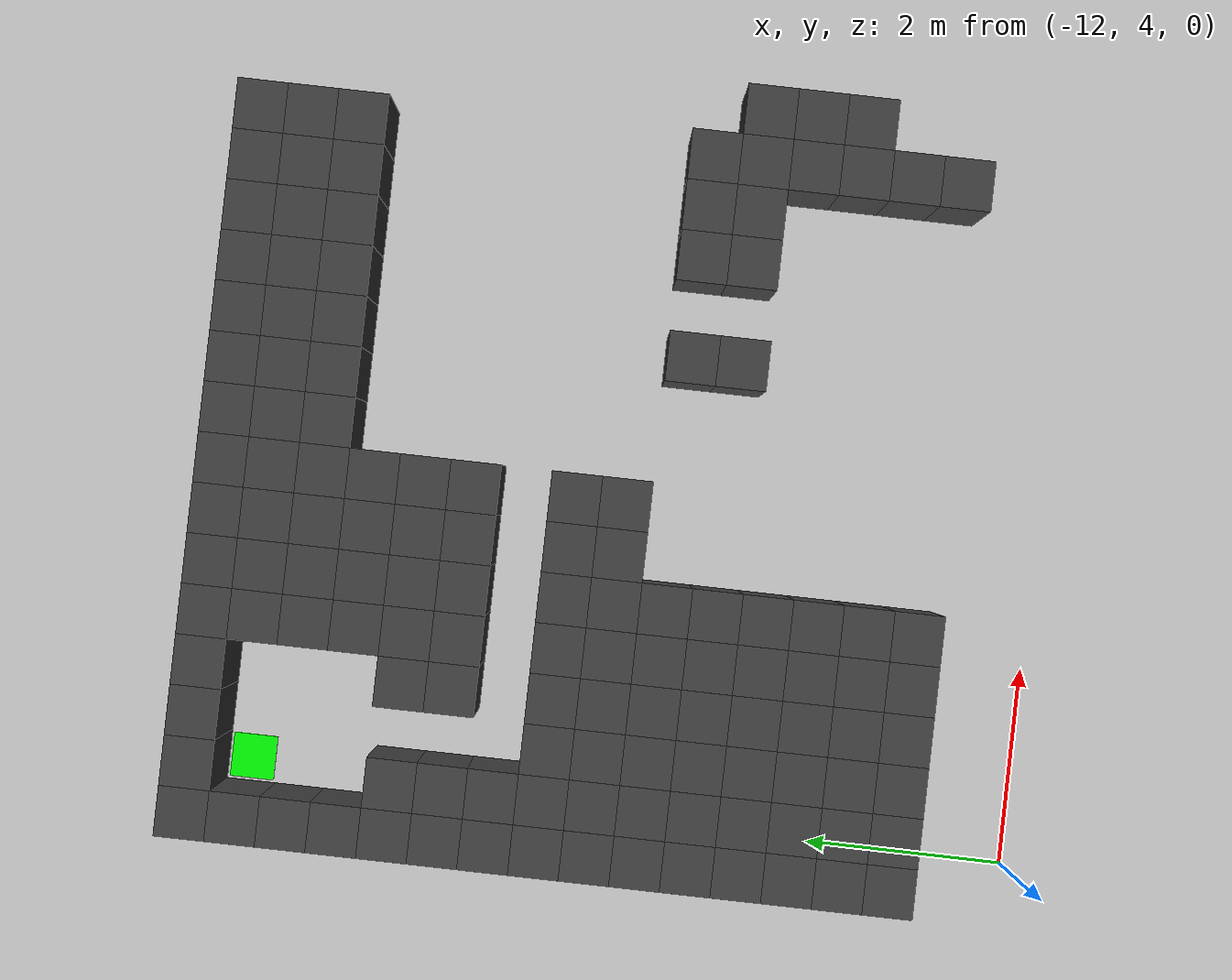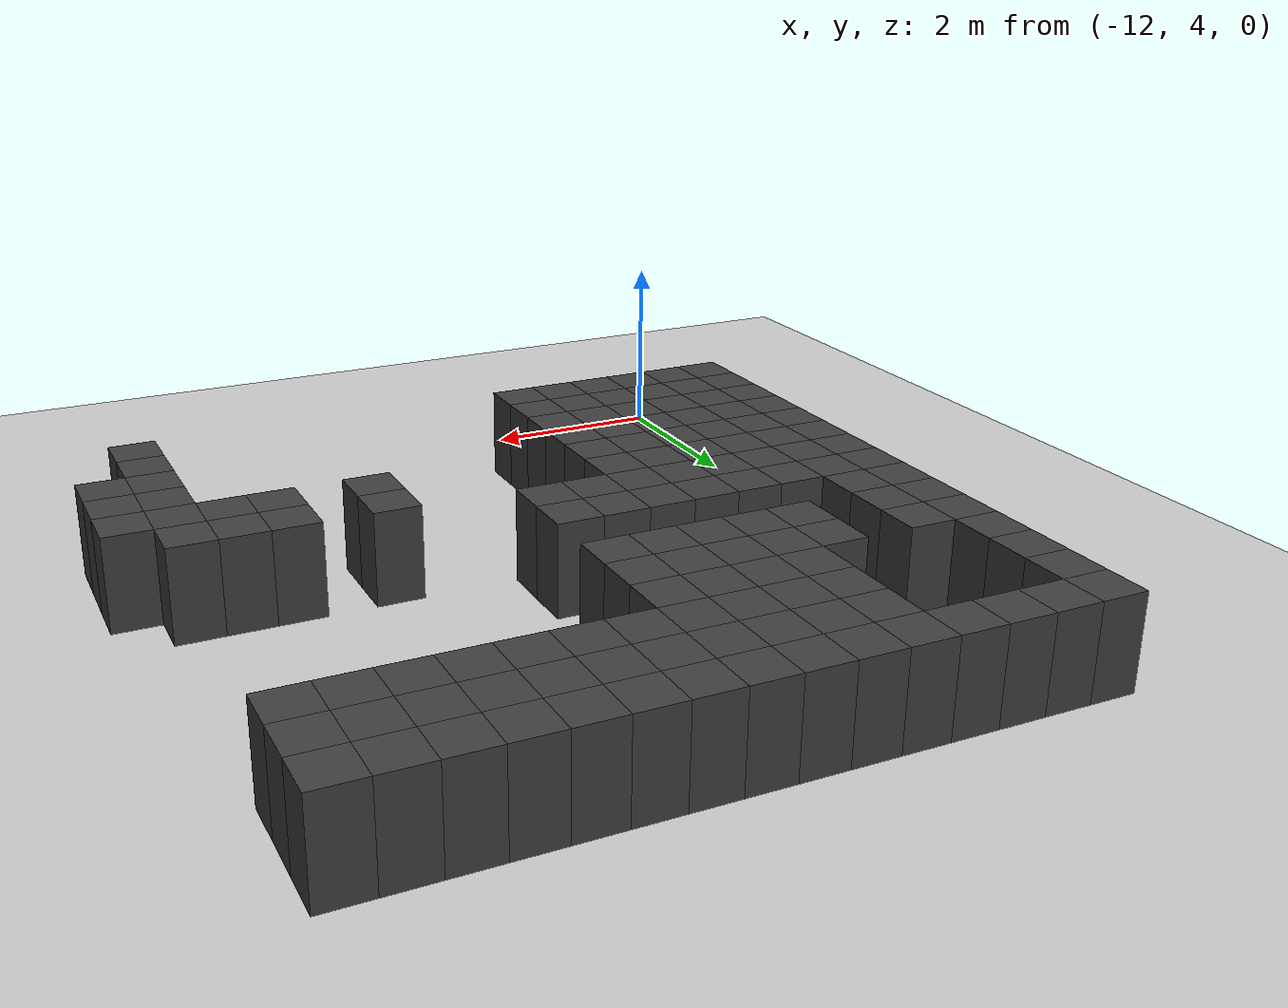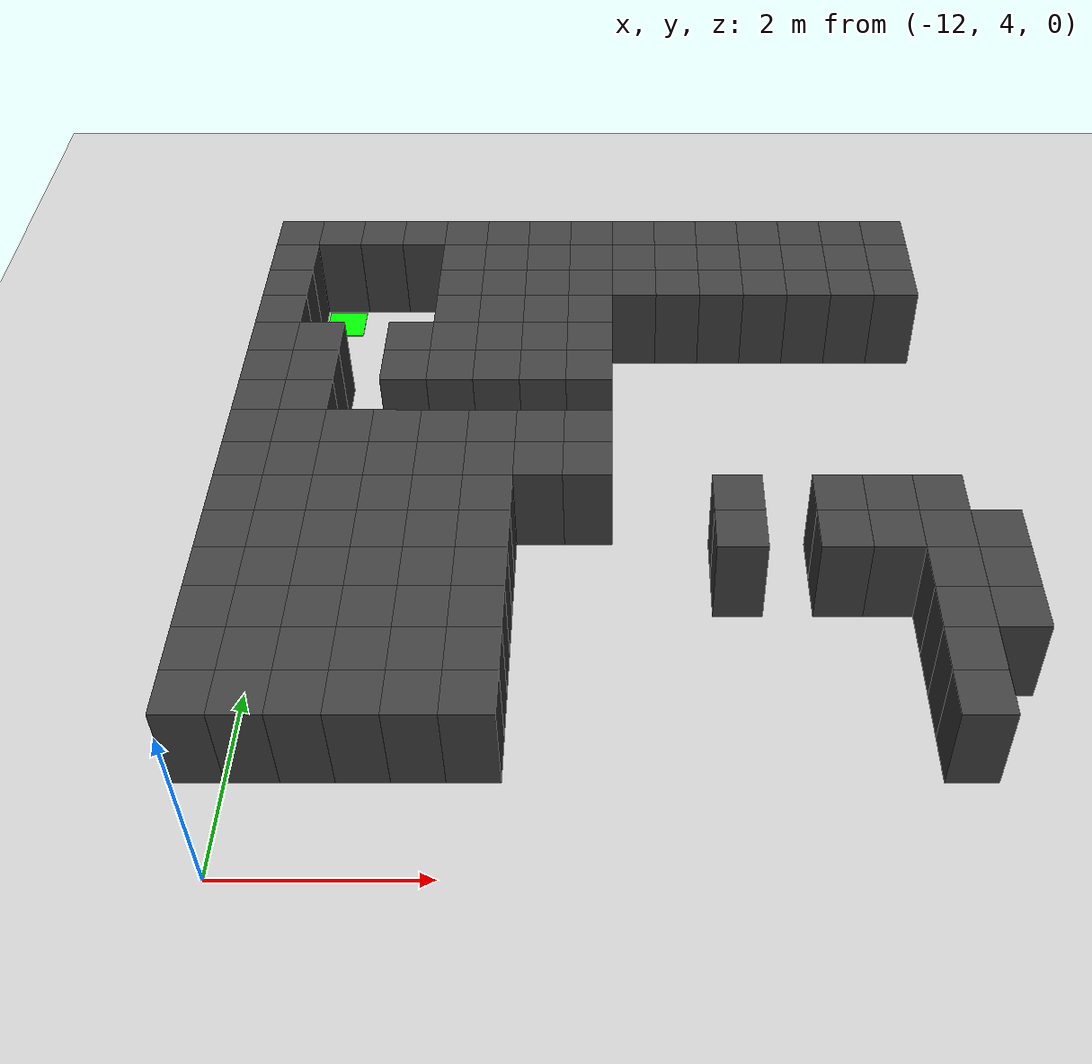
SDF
<sdf version="1.7">
 <world name="map_14494">
  <model name="ground_plane">
   <static>true</static>
   <link name="link">
    <collision name="collision">
     <geometry><plane><normal>0 0 1</normal><size>200 200</size></plane></geometry>
    </collision>
    <visual name="visual">
     <geometry><plane><normal>0 0 1</normal><size>200 200</size></plane></geometry>
     <material><ambient>0.8 0.8 0.8 1</ambient><diffuse>0.8 0.8 0.8 1</diffuse></material>
    </visual>
   </link>
  </model>
  <model name="maze_environment">
   <static>true</static>
   <link name="wall_0">
    <pose>-12.250 12.250 0.500 0 0 0</pose>
    <collision name="col"><geometry><box><size>0.5 0.5 1.0</size></box></geometry></collision>
    <visual name="vis">
     <geometry><box><size>0.5 0.5 1.0</size></box></geometry>
     <material><ambient>0.15 0.15 0.15 1</ambient><diffuse>0.25 0.25 0.25 1</diffuse></material>
    </visual>
   </link>
   <link name="wall_1">
    <pose>-11.750 12.250 0.500 0 0 0</pose>
    <collision name="col"><geometry><box><size>0.5 0.5 1.0</size></box></geometry></collision>
    <visual name="vis">
     <geometry><box><size>0.5 0.5 1.0</size></box></geometry>
     <material><ambient>0.15 0.15 0.15 1</ambient><diffuse>0.25 0.25 0.25 1</diffuse></material>
    </visual>
   </link>
   <link name="wall_2">
    <pose>-11.250 12.250 0.500 0 0 0</pose>
    <collision name="col"><geometry><box><size>0.5 0.5 1.0</size></box></geometry></collision>
    <visual name="vis">
     <geometry><box><size>0.5 0.5 1.0</size></box></geometry>
     <material><ambient>0.15 0.15 0.15 1</ambient><diffuse>0.25 0.25 0.25 1</diffuse></material>
    </visual>
   </link>
   <link name="wall_3">
    <pose>-10.750 12.250 0.500 0 0 0</pose>
    <collision name="col"><geometry><box><size>0.5 0.5 1.0</size></box></geometry></collision>
    <visual name="vis">
     <geometry><box><size>0.5 0.5 1.0</size></box></geometry>
     <material><ambient>0.15 0.15 0.15 1</ambient><diffuse>0.25 0.25 0.25 1</diffuse></material>
    </visual>
   </link>
   <link name="wall_4">
    <pose>-10.250 12.250 0.500 0 0 0</pose>
    <collision name="col"><geometry><box><size>0.5 0.5 1.0</size></box></geometry></collision>
    <visual name="vis">
     <geometry><box><size>0.5 0.5 1.0</size></box></geometry>
     <material><ambient>0.15 0.15 0.15 1</ambient><diffuse>0.25 0.25 0.25 1</diffuse></material>
    </visual>
   </link>
   <link name="wall_5">
    <pose>-9.750 12.250 0.500 0 0 0</pose>
    <collision name="col"><geometry><box><size>0.5 0.5 1.0</size></box></geometry></collision>
    <visual name="vis">
     <geometry><box><size>0.5 0.5 1.0</size></box></geometry>
     <material><ambient>0.15 0.15 0.15 1</ambient><diffuse>0.25 0.25 0.25 1</diffuse></material>
    </visual>
   </link>
   <link name="wall_6">
    <pose>-9.250 12.250 0.500 0 0 0</pose>
    <collision name="col"><geometry><box><size>0.5 0.5 1.0</size></box></geometry></collision>
    <visual name="vis">
     <geometry><box><size>0.5 0.5 1.0</size></box></geometry>
     <material><ambient>0.15 0.15 0.15 1</ambient><diffuse>0.25 0.25 0.25 1</diffuse></material>
    </visual>
   </link>
   <link name="wall_7">
    <pose>-8.750 12.250 0.500 0 0 0</pose>
    <collision name="col"><geometry><box><size>0.5 0.5 1.0</size></box></geometry></collision>
    <visual name="vis">
     <geometry><box><size>0.5 0.5 1.0</size></box></geometry>
     <material><ambient>0.15 0.15 0.15 1</ambient><diffuse>0.25 0.25 0.25 1</diffuse></material>
    </visual>
   </link>
   <link name="wall_8">
    <pose>-8.250 12.250 0.500 0 0 0</pose>
    <collision name="col"><geometry><box><size>0.5 0.5 1.0</size></box></geometry></collision>
    <visual name="vis">
     <geometry><box><size>0.5 0.5 1.0</size></box></geometry>
     <material><ambient>0.15 0.15 0.15 1</ambient><diffuse>0.25 0.25 0.25 1</diffuse></material>
    </visual>
   </link>
   <link name="wall_9">
    <pose>-7.750 12.250 0.500 0 0 0</pose>
    <collision name="col"><geometry><box><size>0.5 0.5 1.0</size></box></geometry></collision>
    <visual name="vis">
     <geometry><box><size>0.5 0.5 1.0</size></box></geometry>
     <material><ambient>0.15 0.15 0.15 1</ambient><diffuse>0.25 0.25 0.25 1</diffuse></material>
    </visual>
   </link>
   <link name="wall_10">
    <pose>-7.250 12.250 0.500 0 0 0</pose>
    <collision name="col"><geometry><box><size>0.5 0.5 1.0</size></box></geometry></collision>
    <visual name="vis">
     <geometry><box><size>0.5 0.5 1.0</size></box></geometry>
     <material><ambient>0.15 0.15 0.15 1</ambient><diffuse>0.25 0.25 0.25 1</diffuse></material>
    </visual>
   </link>
   <link name="wall_11">
    <pose>-6.750 12.250 0.500 0 0 0</pose>
    <collision name="col"><geometry><box><size>0.5 0.5 1.0</size></box></geometry></collision>
    <visual name="vis">
     <geometry><box><size>0.5 0.5 1.0</size></box></geometry>
     <material><ambient>0.15 0.15 0.15 1</ambient><diffuse>0.25 0.25 0.25 1</diffuse></material>
    </visual>
   </link>
   <link name="wall_12">
    <pose>-6.250 12.250 0.500 0 0 0</pose>
    <collision name="col"><geometry><box><size>0.5 0.5 1.0</size></box></geometry></collision>
    <visual name="vis">
     <geometry><box><size>0.5 0.5 1.0</size></box></geometry>
     <material><ambient>0.15 0.15 0.15 1</ambient><diffuse>0.25 0.25 0.25 1</diffuse></material>
    </visual>
   </link>
   <link name="wall_13">
    <pose>-5.750 12.250 0.500 0 0 0</pose>
    <collision name="col"><geometry><box><size>0.5 0.5 1.0</size></box></geometry></collision>
    <visual name="vis">
     <geometry><box><size>0.5 0.5 1.0</size></box></geometry>
     <material><ambient>0.15 0.15 0.15 1</ambient><diffuse>0.25 0.25 0.25 1</diffuse></material>
    </visual>
   </link>
   <link name="wall_14">
    <pose>-5.250 12.250 0.500 0 0 0</pose>
    <collision name="col"><geometry><box><size>0.5 0.5 1.0</size></box></geometry></collision>
    <visual name="vis">
     <geometry><box><size>0.5 0.5 1.0</size></box></geometry>
     <material><ambient>0.15 0.15 0.15 1</ambient><diffuse>0.25 0.25 0.25 1</diffuse></material>
    </visual>
   </link>
   <link name="wall_50">
    <pose>-12.250 11.750 0.500 0 0 0</pose>
    <collision name="col"><geometry><box><size>0.5 0.5 1.0</size></box></geometry></collision>
    <visual name="vis">
     <geometry><box><size>0.5 0.5 1.0</size></box></geometry>
     <material><ambient>0.15 0.15 0.15 1</ambient><diffuse>0.25 0.25 0.25 1</diffuse></material>
    </visual>
   </link>
   <link name="wall_51">
    <pose>-10.250 11.750 0.500 0 0 0</pose>
    <collision name="col"><geometry><box><size>0.5 0.5 1.0</size></box></geometry></collision>
    <visual name="vis">
     <geometry><box><size>0.5 0.5 1.0</size></box></geometry>
     <material><ambient>0.15 0.15 0.15 1</ambient><diffuse>0.25 0.25 0.25 1</diffuse></material>
    </visual>
   </link>
   <link name="wall_52">
    <pose>-9.750 11.750 0.500 0 0 0</pose>
    <collision name="col"><geometry><box><size>0.5 0.5 1.0</size></box></geometry></collision>
    <visual name="vis">
     <geometry><box><size>0.5 0.5 1.0</size></box></geometry>
     <material><ambient>0.15 0.15 0.15 1</ambient><diffuse>0.25 0.25 0.25 1</diffuse></material>
    </visual>
   </link>
   <link name="wall_53">
    <pose>-9.250 11.750 0.500 0 0 0</pose>
    <collision name="col"><geometry><box><size>0.5 0.5 1.0</size></box></geometry></collision>
    <visual name="vis">
     <geometry><box><size>0.5 0.5 1.0</size></box></geometry>
     <material><ambient>0.15 0.15 0.15 1</ambient><diffuse>0.25 0.25 0.25 1</diffuse></material>
    </visual>
   </link>
   <link name="wall_54">
    <pose>-8.750 11.750 0.500 0 0 0</pose>
    <collision name="col"><geometry><box><size>0.5 0.5 1.0</size></box></geometry></collision>
    <visual name="vis">
     <geometry><box><size>0.5 0.5 1.0</size></box></geometry>
     <material><ambient>0.15 0.15 0.15 1</ambient><diffuse>0.25 0.25 0.25 1</diffuse></material>
    </visual>
   </link>
   <link name="wall_55">
    <pose>-8.250 11.750 0.500 0 0 0</pose>
    <collision name="col"><geometry><box><size>0.5 0.5 1.0</size></box></geometry></collision>
    <visual name="vis">
     <geometry><box><size>0.5 0.5 1.0</size></box></geometry>
     <material><ambient>0.15 0.15 0.15 1</ambient><diffuse>0.25 0.25 0.25 1</diffuse></material>
    </visual>
   </link>
   <link name="wall_56">
    <pose>-7.750 11.750 0.500 0 0 0</pose>
    <collision name="col"><geometry><box><size>0.5 0.5 1.0</size></box></geometry></collision>
    <visual name="vis">
     <geometry><box><size>0.5 0.5 1.0</size></box></geometry>
     <material><ambient>0.15 0.15 0.15 1</ambient><diffuse>0.25 0.25 0.25 1</diffuse></material>
    </visual>
   </link>
   <link name="wall_57">
    <pose>-7.250 11.750 0.500 0 0 0</pose>
    <collision name="col"><geometry><box><size>0.5 0.5 1.0</size></box></geometry></collision>
    <visual name="vis">
     <geometry><box><size>0.5 0.5 1.0</size></box></geometry>
     <material><ambient>0.15 0.15 0.15 1</ambient><diffuse>0.25 0.25 0.25 1</diffuse></material>
    </visual>
   </link>
   <link name="wall_58">
    <pose>-6.750 11.750 0.500 0 0 0</pose>
    <collision name="col"><geometry><box><size>0.5 0.5 1.0</size></box></geometry></collision>
    <visual name="vis">
     <geometry><box><size>0.5 0.5 1.0</size></box></geometry>
     <material><ambient>0.15 0.15 0.15 1</ambient><diffuse>0.25 0.25 0.25 1</diffuse></material>
    </visual>
   </link>
   <link name="wall_59">
    <pose>-6.250 11.750 0.500 0 0 0</pose>
    <collision name="col"><geometry><box><size>0.5 0.5 1.0</size></box></geometry></collision>
    <visual name="vis">
     <geometry><box><size>0.5 0.5 1.0</size></box></geometry>
     <material><ambient>0.15 0.15 0.15 1</ambient><diffuse>0.25 0.25 0.25 1</diffuse></material>
    </visual>
   </link>
   <link name="wall_60">
    <pose>-5.750 11.750 0.500 0 0 0</pose>
    <collision name="col"><geometry><box><size>0.5 0.5 1.0</size></box></geometry></collision>
    <visual name="vis">
     <geometry><box><size>0.5 0.5 1.0</size></box></geometry>
     <material><ambient>0.15 0.15 0.15 1</ambient><diffuse>0.25 0.25 0.25 1</diffuse></material>
    </visual>
   </link>
   <link name="wall_61">
    <pose>-5.250 11.750 0.500 0 0 0</pose>
    <collision name="col"><geometry><box><size>0.5 0.5 1.0</size></box></geometry></collision>
    <visual name="vis">
     <geometry><box><size>0.5 0.5 1.0</size></box></geometry>
     <material><ambient>0.15 0.15 0.15 1</ambient><diffuse>0.25 0.25 0.25 1</diffuse></material>
    </visual>
   </link>
   <link name="wall_97">
    <pose>-12.250 11.250 0.500 0 0 0</pose>
    <collision name="col"><geometry><box><size>0.5 0.5 1.0</size></box></geometry></collision>
    <visual name="vis">
     <geometry><box><size>0.5 0.5 1.0</size></box></geometry>
     <material><ambient>0.15 0.15 0.15 1</ambient><diffuse>0.25 0.25 0.25 1</diffuse></material>
    </visual>
   </link>
   <link name="wall_98">
    <pose>-10.250 11.250 0.500 0 0 0</pose>
    <collision name="col"><geometry><box><size>0.5 0.5 1.0</size></box></geometry></collision>
    <visual name="vis">
     <geometry><box><size>0.5 0.5 1.0</size></box></geometry>
     <material><ambient>0.15 0.15 0.15 1</ambient><diffuse>0.25 0.25 0.25 1</diffuse></material>
    </visual>
   </link>
   <link name="wall_99">
    <pose>-9.750 11.250 0.500 0 0 0</pose>
    <collision name="col"><geometry><box><size>0.5 0.5 1.0</size></box></geometry></collision>
    <visual name="vis">
     <geometry><box><size>0.5 0.5 1.0</size></box></geometry>
     <material><ambient>0.15 0.15 0.15 1</ambient><diffuse>0.25 0.25 0.25 1</diffuse></material>
    </visual>
   </link>
   <link name="wall_100">
    <pose>-9.250 11.250 0.500 0 0 0</pose>
    <collision name="col"><geometry><box><size>0.5 0.5 1.0</size></box></geometry></collision>
    <visual name="vis">
     <geometry><box><size>0.5 0.5 1.0</size></box></geometry>
     <material><ambient>0.15 0.15 0.15 1</ambient><diffuse>0.25 0.25 0.25 1</diffuse></material>
    </visual>
   </link>
   <link name="wall_101">
    <pose>-8.750 11.250 0.500 0 0 0</pose>
    <collision name="col"><geometry><box><size>0.5 0.5 1.0</size></box></geometry></collision>
    <visual name="vis">
     <geometry><box><size>0.5 0.5 1.0</size></box></geometry>
     <material><ambient>0.15 0.15 0.15 1</ambient><diffuse>0.25 0.25 0.25 1</diffuse></material>
    </visual>
   </link>
   <link name="wall_102">
    <pose>-8.250 11.250 0.500 0 0 0</pose>
    <collision name="col"><geometry><box><size>0.5 0.5 1.0</size></box></geometry></collision>
    <visual name="vis">
     <geometry><box><size>0.5 0.5 1.0</size></box></geometry>
     <material><ambient>0.15 0.15 0.15 1</ambient><diffuse>0.25 0.25 0.25 1</diffuse></material>
    </visual>
   </link>
   <link name="wall_103">
    <pose>-7.750 11.250 0.500 0 0 0</pose>
    <collision name="col"><geometry><box><size>0.5 0.5 1.0</size></box></geometry></collision>
    <visual name="vis">
     <geometry><box><size>0.5 0.5 1.0</size></box></geometry>
     <material><ambient>0.15 0.15 0.15 1</ambient><diffuse>0.25 0.25 0.25 1</diffuse></material>
    </visual>
   </link>
   <link name="wall_104">
    <pose>-7.250 11.250 0.500 0 0 0</pose>
    <collision name="col"><geometry><box><size>0.5 0.5 1.0</size></box></geometry></collision>
    <visual name="vis">
     <geometry><box><size>0.5 0.5 1.0</size></box></geometry>
     <material><ambient>0.15 0.15 0.15 1</ambient><diffuse>0.25 0.25 0.25 1</diffuse></material>
    </visual>
   </link>
   <link name="wall_105">
    <pose>-6.750 11.250 0.500 0 0 0</pose>
    <collision name="col"><geometry><box><size>0.5 0.5 1.0</size></box></geometry></collision>
    <visual name="vis">
     <geometry><box><size>0.5 0.5 1.0</size></box></geometry>
     <material><ambient>0.15 0.15 0.15 1</ambient><diffuse>0.25 0.25 0.25 1</diffuse></material>
    </visual>
   </link>
   <link name="wall_106">
    <pose>-6.250 11.250 0.500 0 0 0</pose>
    <collision name="col"><geometry><box><size>0.5 0.5 1.0</size></box></geometry></collision>
    <visual name="vis">
     <geometry><box><size>0.5 0.5 1.0</size></box></geometry>
     <material><ambient>0.15 0.15 0.15 1</ambient><diffuse>0.25 0.25 0.25 1</diffuse></material>
    </visual>
   </link>
   <link name="wall_107">
    <pose>-5.750 11.250 0.500 0 0 0</pose>
    <collision name="col"><geometry><box><size>0.5 0.5 1.0</size></box></geometry></collision>
    <visual name="vis">
     <geometry><box><size>0.5 0.5 1.0</size></box></geometry>
     <material><ambient>0.15 0.15 0.15 1</ambient><diffuse>0.25 0.25 0.25 1</diffuse></material>
    </visual>
   </link>
   <link name="wall_108">
    <pose>-5.250 11.250 0.500 0 0 0</pose>
    <collision name="col"><geometry><box><size>0.5 0.5 1.0</size></box></geometry></collision>
    <visual name="vis">
     <geometry><box><size>0.5 0.5 1.0</size></box></geometry>
     <material><ambient>0.15 0.15 0.15 1</ambient><diffuse>0.25 0.25 0.25 1</diffuse></material>
    </visual>
   </link>
   <link name="wall_132">
    <pose>-12.250 10.750 0.500 0 0 0</pose>
    <collision name="col"><geometry><box><size>0.5 0.5 1.0</size></box></geometry></collision>
    <visual name="vis">
     <geometry><box><size>0.5 0.5 1.0</size></box></geometry>
     <material><ambient>0.15 0.15 0.15 1</ambient><diffuse>0.25 0.25 0.25 1</diffuse></material>
    </visual>
   </link>
   <link name="wall_133">
    <pose>-10.250 10.750 0.500 0 0 0</pose>
    <collision name="col"><geometry><box><size>0.5 0.5 1.0</size></box></geometry></collision>
    <visual name="vis">
     <geometry><box><size>0.5 0.5 1.0</size></box></geometry>
     <material><ambient>0.15 0.15 0.15 1</ambient><diffuse>0.25 0.25 0.25 1</diffuse></material>
    </visual>
   </link>
   <link name="wall_134">
    <pose>-9.750 10.750 0.500 0 0 0</pose>
    <collision name="col"><geometry><box><size>0.5 0.5 1.0</size></box></geometry></collision>
    <visual name="vis">
     <geometry><box><size>0.5 0.5 1.0</size></box></geometry>
     <material><ambient>0.15 0.15 0.15 1</ambient><diffuse>0.25 0.25 0.25 1</diffuse></material>
    </visual>
   </link>
   <link name="wall_135">
    <pose>-9.250 10.750 0.500 0 0 0</pose>
    <collision name="col"><geometry><box><size>0.5 0.5 1.0</size></box></geometry></collision>
    <visual name="vis">
     <geometry><box><size>0.5 0.5 1.0</size></box></geometry>
     <material><ambient>0.15 0.15 0.15 1</ambient><diffuse>0.25 0.25 0.25 1</diffuse></material>
    </visual>
   </link>
   <link name="wall_136">
    <pose>-8.750 10.750 0.500 0 0 0</pose>
    <collision name="col"><geometry><box><size>0.5 0.5 1.0</size></box></geometry></collision>
    <visual name="vis">
     <geometry><box><size>0.5 0.5 1.0</size></box></geometry>
     <material><ambient>0.15 0.15 0.15 1</ambient><diffuse>0.25 0.25 0.25 1</diffuse></material>
    </visual>
   </link>
   <link name="wall_160">
    <pose>-12.250 10.250 0.500 0 0 0</pose>
    <collision name="col"><geometry><box><size>0.5 0.5 1.0</size></box></geometry></collision>
    <visual name="vis">
     <geometry><box><size>0.5 0.5 1.0</size></box></geometry>
     <material><ambient>0.15 0.15 0.15 1</ambient><diffuse>0.25 0.25 0.25 1</diffuse></material>
    </visual>
   </link>
   <link name="wall_161">
    <pose>-11.750 10.250 0.500 0 0 0</pose>
    <collision name="col"><geometry><box><size>0.5 0.5 1.0</size></box></geometry></collision>
    <visual name="vis">
     <geometry><box><size>0.5 0.5 1.0</size></box></geometry>
     <material><ambient>0.15 0.15 0.15 1</ambient><diffuse>0.25 0.25 0.25 1</diffuse></material>
    </visual>
   </link>
   <link name="wall_162">
    <pose>-10.750 10.250 0.500 0 0 0</pose>
    <collision name="col"><geometry><box><size>0.5 0.5 1.0</size></box></geometry></collision>
    <visual name="vis">
     <geometry><box><size>0.5 0.5 1.0</size></box></geometry>
     <material><ambient>0.15 0.15 0.15 1</ambient><diffuse>0.25 0.25 0.25 1</diffuse></material>
    </visual>
   </link>
   <link name="wall_163">
    <pose>-10.250 10.250 0.500 0 0 0</pose>
    <collision name="col"><geometry><box><size>0.5 0.5 1.0</size></box></geometry></collision>
    <visual name="vis">
     <geometry><box><size>0.5 0.5 1.0</size></box></geometry>
     <material><ambient>0.15 0.15 0.15 1</ambient><diffuse>0.25 0.25 0.25 1</diffuse></material>
    </visual>
   </link>
   <link name="wall_164">
    <pose>-9.750 10.250 0.500 0 0 0</pose>
    <collision name="col"><geometry><box><size>0.5 0.5 1.0</size></box></geometry></collision>
    <visual name="vis">
     <geometry><box><size>0.5 0.5 1.0</size></box></geometry>
     <material><ambient>0.15 0.15 0.15 1</ambient><diffuse>0.25 0.25 0.25 1</diffuse></material>
    </visual>
   </link>
   <link name="wall_165">
    <pose>-9.250 10.250 0.500 0 0 0</pose>
    <collision name="col"><geometry><box><size>0.5 0.5 1.0</size></box></geometry></collision>
    <visual name="vis">
     <geometry><box><size>0.5 0.5 1.0</size></box></geometry>
     <material><ambient>0.15 0.15 0.15 1</ambient><diffuse>0.25 0.25 0.25 1</diffuse></material>
    </visual>
   </link>
   <link name="wall_166">
    <pose>-8.750 10.250 0.500 0 0 0</pose>
    <collision name="col"><geometry><box><size>0.5 0.5 1.0</size></box></geometry></collision>
    <visual name="vis">
     <geometry><box><size>0.5 0.5 1.0</size></box></geometry>
     <material><ambient>0.15 0.15 0.15 1</ambient><diffuse>0.25 0.25 0.25 1</diffuse></material>
    </visual>
   </link>
   <link name="wall_178">
    <pose>-12.250 9.750 0.500 0 0 0</pose>
    <collision name="col"><geometry><box><size>0.5 0.5 1.0</size></box></geometry></collision>
    <visual name="vis">
     <geometry><box><size>0.5 0.5 1.0</size></box></geometry>
     <material><ambient>0.15 0.15 0.15 1</ambient><diffuse>0.25 0.25 0.25 1</diffuse></material>
    </visual>
   </link>
   <link name="wall_179">
    <pose>-11.750 9.750 0.500 0 0 0</pose>
    <collision name="col"><geometry><box><size>0.5 0.5 1.0</size></box></geometry></collision>
    <visual name="vis">
     <geometry><box><size>0.5 0.5 1.0</size></box></geometry>
     <material><ambient>0.15 0.15 0.15 1</ambient><diffuse>0.25 0.25 0.25 1</diffuse></material>
    </visual>
   </link>
   <link name="wall_180">
    <pose>-10.750 9.750 0.500 0 0 0</pose>
    <collision name="col"><geometry><box><size>0.5 0.5 1.0</size></box></geometry></collision>
    <visual name="vis">
     <geometry><box><size>0.5 0.5 1.0</size></box></geometry>
     <material><ambient>0.15 0.15 0.15 1</ambient><diffuse>0.25 0.25 0.25 1</diffuse></material>
    </visual>
   </link>
   <link name="wall_181">
    <pose>-10.250 9.750 0.500 0 0 0</pose>
    <collision name="col"><geometry><box><size>0.5 0.5 1.0</size></box></geometry></collision>
    <visual name="vis">
     <geometry><box><size>0.5 0.5 1.0</size></box></geometry>
     <material><ambient>0.15 0.15 0.15 1</ambient><diffuse>0.25 0.25 0.25 1</diffuse></material>
    </visual>
   </link>
   <link name="wall_182">
    <pose>-9.750 9.750 0.500 0 0 0</pose>
    <collision name="col"><geometry><box><size>0.5 0.5 1.0</size></box></geometry></collision>
    <visual name="vis">
     <geometry><box><size>0.5 0.5 1.0</size></box></geometry>
     <material><ambient>0.15 0.15 0.15 1</ambient><diffuse>0.25 0.25 0.25 1</diffuse></material>
    </visual>
   </link>
   <link name="wall_183">
    <pose>-9.250 9.750 0.500 0 0 0</pose>
    <collision name="col"><geometry><box><size>0.5 0.5 1.0</size></box></geometry></collision>
    <visual name="vis">
     <geometry><box><size>0.5 0.5 1.0</size></box></geometry>
     <material><ambient>0.15 0.15 0.15 1</ambient><diffuse>0.25 0.25 0.25 1</diffuse></material>
    </visual>
   </link>
   <link name="wall_184">
    <pose>-8.750 9.750 0.500 0 0 0</pose>
    <collision name="col"><geometry><box><size>0.5 0.5 1.0</size></box></geometry></collision>
    <visual name="vis">
     <geometry><box><size>0.5 0.5 1.0</size></box></geometry>
     <material><ambient>0.15 0.15 0.15 1</ambient><diffuse>0.25 0.25 0.25 1</diffuse></material>
    </visual>
   </link>
   <link name="wall_208">
    <pose>-12.250 9.250 0.500 0 0 0</pose>
    <collision name="col"><geometry><box><size>0.5 0.5 1.0</size></box></geometry></collision>
    <visual name="vis">
     <geometry><box><size>0.5 0.5 1.0</size></box></geometry>
     <material><ambient>0.15 0.15 0.15 1</ambient><diffuse>0.25 0.25 0.25 1</diffuse></material>
    </visual>
   </link>
   <link name="wall_209">
    <pose>-11.750 9.250 0.500 0 0 0</pose>
    <collision name="col"><geometry><box><size>0.5 0.5 1.0</size></box></geometry></collision>
    <visual name="vis">
     <geometry><box><size>0.5 0.5 1.0</size></box></geometry>
     <material><ambient>0.15 0.15 0.15 1</ambient><diffuse>0.25 0.25 0.25 1</diffuse></material>
    </visual>
   </link>
   <link name="wall_233">
    <pose>-12.250 8.750 0.500 0 0 0</pose>
    <collision name="col"><geometry><box><size>0.5 0.5 1.0</size></box></geometry></collision>
    <visual name="vis">
     <geometry><box><size>0.5 0.5 1.0</size></box></geometry>
     <material><ambient>0.15 0.15 0.15 1</ambient><diffuse>0.25 0.25 0.25 1</diffuse></material>
    </visual>
   </link>
   <link name="wall_234">
    <pose>-11.750 8.750 0.500 0 0 0</pose>
    <collision name="col"><geometry><box><size>0.5 0.5 1.0</size></box></geometry></collision>
    <visual name="vis">
     <geometry><box><size>0.5 0.5 1.0</size></box></geometry>
     <material><ambient>0.15 0.15 0.15 1</ambient><diffuse>0.25 0.25 0.25 1</diffuse></material>
    </visual>
   </link>
   <link name="wall_235">
    <pose>-11.250 8.750 0.500 0 0 0</pose>
    <collision name="col"><geometry><box><size>0.5 0.5 1.0</size></box></geometry></collision>
    <visual name="vis">
     <geometry><box><size>0.5 0.5 1.0</size></box></geometry>
     <material><ambient>0.15 0.15 0.15 1</ambient><diffuse>0.25 0.25 0.25 1</diffuse></material>
    </visual>
   </link>
   <link name="wall_236">
    <pose>-10.750 8.750 0.500 0 0 0</pose>
    <collision name="col"><geometry><box><size>0.5 0.5 1.0</size></box></geometry></collision>
    <visual name="vis">
     <geometry><box><size>0.5 0.5 1.0</size></box></geometry>
     <material><ambient>0.15 0.15 0.15 1</ambient><diffuse>0.25 0.25 0.25 1</diffuse></material>
    </visual>
   </link>
   <link name="wall_237">
    <pose>-10.250 8.750 0.500 0 0 0</pose>
    <collision name="col"><geometry><box><size>0.5 0.5 1.0</size></box></geometry></collision>
    <visual name="vis">
     <geometry><box><size>0.5 0.5 1.0</size></box></geometry>
     <material><ambient>0.15 0.15 0.15 1</ambient><diffuse>0.25 0.25 0.25 1</diffuse></material>
    </visual>
   </link>
   <link name="wall_238">
    <pose>-9.750 8.750 0.500 0 0 0</pose>
    <collision name="col"><geometry><box><size>0.5 0.5 1.0</size></box></geometry></collision>
    <visual name="vis">
     <geometry><box><size>0.5 0.5 1.0</size></box></geometry>
     <material><ambient>0.15 0.15 0.15 1</ambient><diffuse>0.25 0.25 0.25 1</diffuse></material>
    </visual>
   </link>
   <link name="wall_239">
    <pose>-9.250 8.750 0.500 0 0 0</pose>
    <collision name="col"><geometry><box><size>0.5 0.5 1.0</size></box></geometry></collision>
    <visual name="vis">
     <geometry><box><size>0.5 0.5 1.0</size></box></geometry>
     <material><ambient>0.15 0.15 0.15 1</ambient><diffuse>0.25 0.25 0.25 1</diffuse></material>
    </visual>
   </link>
   <link name="wall_240">
    <pose>-8.750 8.750 0.500 0 0 0</pose>
    <collision name="col"><geometry><box><size>0.5 0.5 1.0</size></box></geometry></collision>
    <visual name="vis">
     <geometry><box><size>0.5 0.5 1.0</size></box></geometry>
     <material><ambient>0.15 0.15 0.15 1</ambient><diffuse>0.25 0.25 0.25 1</diffuse></material>
    </visual>
   </link>
   <link name="wall_275">
    <pose>-12.250 8.250 0.500 0 0 0</pose>
    <collision name="col"><geometry><box><size>0.5 0.5 1.0</size></box></geometry></collision>
    <visual name="vis">
     <geometry><box><size>0.5 0.5 1.0</size></box></geometry>
     <material><ambient>0.15 0.15 0.15 1</ambient><diffuse>0.25 0.25 0.25 1</diffuse></material>
    </visual>
   </link>
   <link name="wall_276">
    <pose>-11.750 8.250 0.500 0 0 0</pose>
    <collision name="col"><geometry><box><size>0.5 0.5 1.0</size></box></geometry></collision>
    <visual name="vis">
     <geometry><box><size>0.5 0.5 1.0</size></box></geometry>
     <material><ambient>0.15 0.15 0.15 1</ambient><diffuse>0.25 0.25 0.25 1</diffuse></material>
    </visual>
   </link>
   <link name="wall_277">
    <pose>-11.250 8.250 0.500 0 0 0</pose>
    <collision name="col"><geometry><box><size>0.5 0.5 1.0</size></box></geometry></collision>
    <visual name="vis">
     <geometry><box><size>0.5 0.5 1.0</size></box></geometry>
     <material><ambient>0.15 0.15 0.15 1</ambient><diffuse>0.25 0.25 0.25 1</diffuse></material>
    </visual>
   </link>
   <link name="wall_278">
    <pose>-10.750 8.250 0.500 0 0 0</pose>
    <collision name="col"><geometry><box><size>0.5 0.5 1.0</size></box></geometry></collision>
    <visual name="vis">
     <geometry><box><size>0.5 0.5 1.0</size></box></geometry>
     <material><ambient>0.15 0.15 0.15 1</ambient><diffuse>0.25 0.25 0.25 1</diffuse></material>
    </visual>
   </link>
   <link name="wall_279">
    <pose>-10.250 8.250 0.500 0 0 0</pose>
    <collision name="col"><geometry><box><size>0.5 0.5 1.0</size></box></geometry></collision>
    <visual name="vis">
     <geometry><box><size>0.5 0.5 1.0</size></box></geometry>
     <material><ambient>0.15 0.15 0.15 1</ambient><diffuse>0.25 0.25 0.25 1</diffuse></material>
    </visual>
   </link>
   <link name="wall_280">
    <pose>-9.750 8.250 0.500 0 0 0</pose>
    <collision name="col"><geometry><box><size>0.5 0.5 1.0</size></box></geometry></collision>
    <visual name="vis">
     <geometry><box><size>0.5 0.5 1.0</size></box></geometry>
     <material><ambient>0.15 0.15 0.15 1</ambient><diffuse>0.25 0.25 0.25 1</diffuse></material>
    </visual>
   </link>
   <link name="wall_281">
    <pose>-9.250 8.250 0.500 0 0 0</pose>
    <collision name="col"><geometry><box><size>0.5 0.5 1.0</size></box></geometry></collision>
    <visual name="vis">
     <geometry><box><size>0.5 0.5 1.0</size></box></geometry>
     <material><ambient>0.15 0.15 0.15 1</ambient><diffuse>0.25 0.25 0.25 1</diffuse></material>
    </visual>
   </link>
   <link name="wall_282">
    <pose>-8.750 8.250 0.500 0 0 0</pose>
    <collision name="col"><geometry><box><size>0.5 0.5 1.0</size></box></geometry></collision>
    <visual name="vis">
     <geometry><box><size>0.5 0.5 1.0</size></box></geometry>
     <material><ambient>0.15 0.15 0.15 1</ambient><diffuse>0.25 0.25 0.25 1</diffuse></material>
    </visual>
   </link>
   <link name="wall_317">
    <pose>-12.250 7.750 0.500 0 0 0</pose>
    <collision name="col"><geometry><box><size>0.5 0.5 1.0</size></box></geometry></collision>
    <visual name="vis">
     <geometry><box><size>0.5 0.5 1.0</size></box></geometry>
     <material><ambient>0.15 0.15 0.15 1</ambient><diffuse>0.25 0.25 0.25 1</diffuse></material>
    </visual>
   </link>
   <link name="wall_318">
    <pose>-11.750 7.750 0.500 0 0 0</pose>
    <collision name="col"><geometry><box><size>0.5 0.5 1.0</size></box></geometry></collision>
    <visual name="vis">
     <geometry><box><size>0.5 0.5 1.0</size></box></geometry>
     <material><ambient>0.15 0.15 0.15 1</ambient><diffuse>0.25 0.25 0.25 1</diffuse></material>
    </visual>
   </link>
   <link name="wall_319">
    <pose>-11.250 7.750 0.500 0 0 0</pose>
    <collision name="col"><geometry><box><size>0.5 0.5 1.0</size></box></geometry></collision>
    <visual name="vis">
     <geometry><box><size>0.5 0.5 1.0</size></box></geometry>
     <material><ambient>0.15 0.15 0.15 1</ambient><diffuse>0.25 0.25 0.25 1</diffuse></material>
    </visual>
   </link>
   <link name="wall_320">
    <pose>-10.750 7.750 0.500 0 0 0</pose>
    <collision name="col"><geometry><box><size>0.5 0.5 1.0</size></box></geometry></collision>
    <visual name="vis">
     <geometry><box><size>0.5 0.5 1.0</size></box></geometry>
     <material><ambient>0.15 0.15 0.15 1</ambient><diffuse>0.25 0.25 0.25 1</diffuse></material>
    </visual>
   </link>
   <link name="wall_321">
    <pose>-10.250 7.750 0.500 0 0 0</pose>
    <collision name="col"><geometry><box><size>0.5 0.5 1.0</size></box></geometry></collision>
    <visual name="vis">
     <geometry><box><size>0.5 0.5 1.0</size></box></geometry>
     <material><ambient>0.15 0.15 0.15 1</ambient><diffuse>0.25 0.25 0.25 1</diffuse></material>
    </visual>
   </link>
   <link name="wall_322">
    <pose>-9.750 7.750 0.500 0 0 0</pose>
    <collision name="col"><geometry><box><size>0.5 0.5 1.0</size></box></geometry></collision>
    <visual name="vis">
     <geometry><box><size>0.5 0.5 1.0</size></box></geometry>
     <material><ambient>0.15 0.15 0.15 1</ambient><diffuse>0.25 0.25 0.25 1</diffuse></material>
    </visual>
   </link>
   <link name="wall_323">
    <pose>-7.250 7.750 0.500 0 0 0</pose>
    <collision name="col"><geometry><box><size>0.5 0.5 1.0</size></box></geometry></collision>
    <visual name="vis">
     <geometry><box><size>0.5 0.5 1.0</size></box></geometry>
     <material><ambient>0.15 0.15 0.15 1</ambient><diffuse>0.25 0.25 0.25 1</diffuse></material>
    </visual>
   </link>
   <link name="wall_324">
    <pose>-6.250 7.750 0.500 0 0 0</pose>
    <collision name="col"><geometry><box><size>0.5 0.5 1.0</size></box></geometry></collision>
    <visual name="vis">
     <geometry><box><size>0.5 0.5 1.0</size></box></geometry>
     <material><ambient>0.15 0.15 0.15 1</ambient><diffuse>0.25 0.25 0.25 1</diffuse></material>
    </visual>
   </link>
   <link name="wall_325">
    <pose>-5.750 7.750 0.500 0 0 0</pose>
    <collision name="col"><geometry><box><size>0.5 0.5 1.0</size></box></geometry></collision>
    <visual name="vis">
     <geometry><box><size>0.5 0.5 1.0</size></box></geometry>
     <material><ambient>0.15 0.15 0.15 1</ambient><diffuse>0.25 0.25 0.25 1</diffuse></material>
    </visual>
   </link>
   <link name="wall_326">
    <pose>-5.250 7.750 0.500 0 0 0</pose>
    <collision name="col"><geometry><box><size>0.5 0.5 1.0</size></box></geometry></collision>
    <visual name="vis">
     <geometry><box><size>0.5 0.5 1.0</size></box></geometry>
     <material><ambient>0.15 0.15 0.15 1</ambient><diffuse>0.25 0.25 0.25 1</diffuse></material>
    </visual>
   </link>
   <link name="wall_358">
    <pose>-12.250 7.250 0.500 0 0 0</pose>
    <collision name="col"><geometry><box><size>0.5 0.5 1.0</size></box></geometry></collision>
    <visual name="vis">
     <geometry><box><size>0.5 0.5 1.0</size></box></geometry>
     <material><ambient>0.15 0.15 0.15 1</ambient><diffuse>0.25 0.25 0.25 1</diffuse></material>
    </visual>
   </link>
   <link name="wall_359">
    <pose>-11.750 7.250 0.500 0 0 0</pose>
    <collision name="col"><geometry><box><size>0.5 0.5 1.0</size></box></geometry></collision>
    <visual name="vis">
     <geometry><box><size>0.5 0.5 1.0</size></box></geometry>
     <material><ambient>0.15 0.15 0.15 1</ambient><diffuse>0.25 0.25 0.25 1</diffuse></material>
    </visual>
   </link>
   <link name="wall_360">
    <pose>-11.250 7.250 0.500 0 0 0</pose>
    <collision name="col"><geometry><box><size>0.5 0.5 1.0</size></box></geometry></collision>
    <visual name="vis">
     <geometry><box><size>0.5 0.5 1.0</size></box></geometry>
     <material><ambient>0.15 0.15 0.15 1</ambient><diffuse>0.25 0.25 0.25 1</diffuse></material>
    </visual>
   </link>
   <link name="wall_361">
    <pose>-10.750 7.250 0.500 0 0 0</pose>
    <collision name="col"><geometry><box><size>0.5 0.5 1.0</size></box></geometry></collision>
    <visual name="vis">
     <geometry><box><size>0.5 0.5 1.0</size></box></geometry>
     <material><ambient>0.15 0.15 0.15 1</ambient><diffuse>0.25 0.25 0.25 1</diffuse></material>
    </visual>
   </link>
   <link name="wall_362">
    <pose>-10.250 7.250 0.500 0 0 0</pose>
    <collision name="col"><geometry><box><size>0.5 0.5 1.0</size></box></geometry></collision>
    <visual name="vis">
     <geometry><box><size>0.5 0.5 1.0</size></box></geometry>
     <material><ambient>0.15 0.15 0.15 1</ambient><diffuse>0.25 0.25 0.25 1</diffuse></material>
    </visual>
   </link>
   <link name="wall_363">
    <pose>-9.750 7.250 0.500 0 0 0</pose>
    <collision name="col"><geometry><box><size>0.5 0.5 1.0</size></box></geometry></collision>
    <visual name="vis">
     <geometry><box><size>0.5 0.5 1.0</size></box></geometry>
     <material><ambient>0.15 0.15 0.15 1</ambient><diffuse>0.25 0.25 0.25 1</diffuse></material>
    </visual>
   </link>
   <link name="wall_364">
    <pose>-7.250 7.250 0.500 0 0 0</pose>
    <collision name="col"><geometry><box><size>0.5 0.5 1.0</size></box></geometry></collision>
    <visual name="vis">
     <geometry><box><size>0.5 0.5 1.0</size></box></geometry>
     <material><ambient>0.15 0.15 0.15 1</ambient><diffuse>0.25 0.25 0.25 1</diffuse></material>
    </visual>
   </link>
   <link name="wall_365">
    <pose>-6.250 7.250 0.500 0 0 0</pose>
    <collision name="col"><geometry><box><size>0.5 0.5 1.0</size></box></geometry></collision>
    <visual name="vis">
     <geometry><box><size>0.5 0.5 1.0</size></box></geometry>
     <material><ambient>0.15 0.15 0.15 1</ambient><diffuse>0.25 0.25 0.25 1</diffuse></material>
    </visual>
   </link>
   <link name="wall_366">
    <pose>-5.750 7.250 0.500 0 0 0</pose>
    <collision name="col"><geometry><box><size>0.5 0.5 1.0</size></box></geometry></collision>
    <visual name="vis">
     <geometry><box><size>0.5 0.5 1.0</size></box></geometry>
     <material><ambient>0.15 0.15 0.15 1</ambient><diffuse>0.25 0.25 0.25 1</diffuse></material>
    </visual>
   </link>
   <link name="wall_367">
    <pose>-5.250 7.250 0.500 0 0 0</pose>
    <collision name="col"><geometry><box><size>0.5 0.5 1.0</size></box></geometry></collision>
    <visual name="vis">
     <geometry><box><size>0.5 0.5 1.0</size></box></geometry>
     <material><ambient>0.15 0.15 0.15 1</ambient><diffuse>0.25 0.25 0.25 1</diffuse></material>
    </visual>
   </link>
   <link name="wall_368">
    <pose>-4.750 7.250 0.500 0 0 0</pose>
    <collision name="col"><geometry><box><size>0.5 0.5 1.0</size></box></geometry></collision>
    <visual name="vis">
     <geometry><box><size>0.5 0.5 1.0</size></box></geometry>
     <material><ambient>0.15 0.15 0.15 1</ambient><diffuse>0.25 0.25 0.25 1</diffuse></material>
    </visual>
   </link>
   <link name="wall_399">
    <pose>-12.250 6.750 0.500 0 0 0</pose>
    <collision name="col"><geometry><box><size>0.5 0.5 1.0</size></box></geometry></collision>
    <visual name="vis">
     <geometry><box><size>0.5 0.5 1.0</size></box></geometry>
     <material><ambient>0.15 0.15 0.15 1</ambient><diffuse>0.25 0.25 0.25 1</diffuse></material>
    </visual>
   </link>
   <link name="wall_400">
    <pose>-11.750 6.750 0.500 0 0 0</pose>
    <collision name="col"><geometry><box><size>0.5 0.5 1.0</size></box></geometry></collision>
    <visual name="vis">
     <geometry><box><size>0.5 0.5 1.0</size></box></geometry>
     <material><ambient>0.15 0.15 0.15 1</ambient><diffuse>0.25 0.25 0.25 1</diffuse></material>
    </visual>
   </link>
   <link name="wall_401">
    <pose>-11.250 6.750 0.500 0 0 0</pose>
    <collision name="col"><geometry><box><size>0.5 0.5 1.0</size></box></geometry></collision>
    <visual name="vis">
     <geometry><box><size>0.5 0.5 1.0</size></box></geometry>
     <material><ambient>0.15 0.15 0.15 1</ambient><diffuse>0.25 0.25 0.25 1</diffuse></material>
    </visual>
   </link>
   <link name="wall_402">
    <pose>-10.750 6.750 0.500 0 0 0</pose>
    <collision name="col"><geometry><box><size>0.5 0.5 1.0</size></box></geometry></collision>
    <visual name="vis">
     <geometry><box><size>0.5 0.5 1.0</size></box></geometry>
     <material><ambient>0.15 0.15 0.15 1</ambient><diffuse>0.25 0.25 0.25 1</diffuse></material>
    </visual>
   </link>
   <link name="wall_403">
    <pose>-10.250 6.750 0.500 0 0 0</pose>
    <collision name="col"><geometry><box><size>0.5 0.5 1.0</size></box></geometry></collision>
    <visual name="vis">
     <geometry><box><size>0.5 0.5 1.0</size></box></geometry>
     <material><ambient>0.15 0.15 0.15 1</ambient><diffuse>0.25 0.25 0.25 1</diffuse></material>
    </visual>
   </link>
   <link name="wall_404">
    <pose>-9.750 6.750 0.500 0 0 0</pose>
    <collision name="col"><geometry><box><size>0.5 0.5 1.0</size></box></geometry></collision>
    <visual name="vis">
     <geometry><box><size>0.5 0.5 1.0</size></box></geometry>
     <material><ambient>0.15 0.15 0.15 1</ambient><diffuse>0.25 0.25 0.25 1</diffuse></material>
    </visual>
   </link>
   <link name="wall_405">
    <pose>-5.250 6.750 0.500 0 0 0</pose>
    <collision name="col"><geometry><box><size>0.5 0.5 1.0</size></box></geometry></collision>
    <visual name="vis">
     <geometry><box><size>0.5 0.5 1.0</size></box></geometry>
     <material><ambient>0.15 0.15 0.15 1</ambient><diffuse>0.25 0.25 0.25 1</diffuse></material>
    </visual>
   </link>
   <link name="wall_406">
    <pose>-4.750 6.750 0.500 0 0 0</pose>
    <collision name="col"><geometry><box><size>0.5 0.5 1.0</size></box></geometry></collision>
    <visual name="vis">
     <geometry><box><size>0.5 0.5 1.0</size></box></geometry>
     <material><ambient>0.15 0.15 0.15 1</ambient><diffuse>0.25 0.25 0.25 1</diffuse></material>
    </visual>
   </link>
   <link name="wall_437">
    <pose>-12.250 6.250 0.500 0 0 0</pose>
    <collision name="col"><geometry><box><size>0.5 0.5 1.0</size></box></geometry></collision>
    <visual name="vis">
     <geometry><box><size>0.5 0.5 1.0</size></box></geometry>
     <material><ambient>0.15 0.15 0.15 1</ambient><diffuse>0.25 0.25 0.25 1</diffuse></material>
    </visual>
   </link>
   <link name="wall_438">
    <pose>-11.750 6.250 0.500 0 0 0</pose>
    <collision name="col"><geometry><box><size>0.5 0.5 1.0</size></box></geometry></collision>
    <visual name="vis">
     <geometry><box><size>0.5 0.5 1.0</size></box></geometry>
     <material><ambient>0.15 0.15 0.15 1</ambient><diffuse>0.25 0.25 0.25 1</diffuse></material>
    </visual>
   </link>
   <link name="wall_439">
    <pose>-11.250 6.250 0.500 0 0 0</pose>
    <collision name="col"><geometry><box><size>0.5 0.5 1.0</size></box></geometry></collision>
    <visual name="vis">
     <geometry><box><size>0.5 0.5 1.0</size></box></geometry>
     <material><ambient>0.15 0.15 0.15 1</ambient><diffuse>0.25 0.25 0.25 1</diffuse></material>
    </visual>
   </link>
   <link name="wall_440">
    <pose>-10.750 6.250 0.500 0 0 0</pose>
    <collision name="col"><geometry><box><size>0.5 0.5 1.0</size></box></geometry></collision>
    <visual name="vis">
     <geometry><box><size>0.5 0.5 1.0</size></box></geometry>
     <material><ambient>0.15 0.15 0.15 1</ambient><diffuse>0.25 0.25 0.25 1</diffuse></material>
    </visual>
   </link>
   <link name="wall_441">
    <pose>-10.250 6.250 0.500 0 0 0</pose>
    <collision name="col"><geometry><box><size>0.5 0.5 1.0</size></box></geometry></collision>
    <visual name="vis">
     <geometry><box><size>0.5 0.5 1.0</size></box></geometry>
     <material><ambient>0.15 0.15 0.15 1</ambient><diffuse>0.25 0.25 0.25 1</diffuse></material>
    </visual>
   </link>
   <link name="wall_442">
    <pose>-9.750 6.250 0.500 0 0 0</pose>
    <collision name="col"><geometry><box><size>0.5 0.5 1.0</size></box></geometry></collision>
    <visual name="vis">
     <geometry><box><size>0.5 0.5 1.0</size></box></geometry>
     <material><ambient>0.15 0.15 0.15 1</ambient><diffuse>0.25 0.25 0.25 1</diffuse></material>
    </visual>
   </link>
   <link name="wall_443">
    <pose>-5.250 6.250 0.500 0 0 0</pose>
    <collision name="col"><geometry><box><size>0.5 0.5 1.0</size></box></geometry></collision>
    <visual name="vis">
     <geometry><box><size>0.5 0.5 1.0</size></box></geometry>
     <material><ambient>0.15 0.15 0.15 1</ambient><diffuse>0.25 0.25 0.25 1</diffuse></material>
    </visual>
   </link>
   <link name="wall_444">
    <pose>-4.750 6.250 0.500 0 0 0</pose>
    <collision name="col"><geometry><box><size>0.5 0.5 1.0</size></box></geometry></collision>
    <visual name="vis">
     <geometry><box><size>0.5 0.5 1.0</size></box></geometry>
     <material><ambient>0.15 0.15 0.15 1</ambient><diffuse>0.25 0.25 0.25 1</diffuse></material>
    </visual>
   </link>
   <link name="wall_475">
    <pose>-12.250 5.750 0.500 0 0 0</pose>
    <collision name="col"><geometry><box><size>0.5 0.5 1.0</size></box></geometry></collision>
    <visual name="vis">
     <geometry><box><size>0.5 0.5 1.0</size></box></geometry>
     <material><ambient>0.15 0.15 0.15 1</ambient><diffuse>0.25 0.25 0.25 1</diffuse></material>
    </visual>
   </link>
   <link name="wall_476">
    <pose>-11.750 5.750 0.500 0 0 0</pose>
    <collision name="col"><geometry><box><size>0.5 0.5 1.0</size></box></geometry></collision>
    <visual name="vis">
     <geometry><box><size>0.5 0.5 1.0</size></box></geometry>
     <material><ambient>0.15 0.15 0.15 1</ambient><diffuse>0.25 0.25 0.25 1</diffuse></material>
    </visual>
   </link>
   <link name="wall_477">
    <pose>-11.250 5.750 0.500 0 0 0</pose>
    <collision name="col"><geometry><box><size>0.5 0.5 1.0</size></box></geometry></collision>
    <visual name="vis">
     <geometry><box><size>0.5 0.5 1.0</size></box></geometry>
     <material><ambient>0.15 0.15 0.15 1</ambient><diffuse>0.25 0.25 0.25 1</diffuse></material>
    </visual>
   </link>
   <link name="wall_478">
    <pose>-10.750 5.750 0.500 0 0 0</pose>
    <collision name="col"><geometry><box><size>0.5 0.5 1.0</size></box></geometry></collision>
    <visual name="vis">
     <geometry><box><size>0.5 0.5 1.0</size></box></geometry>
     <material><ambient>0.15 0.15 0.15 1</ambient><diffuse>0.25 0.25 0.25 1</diffuse></material>
    </visual>
   </link>
   <link name="wall_479">
    <pose>-10.250 5.750 0.500 0 0 0</pose>
    <collision name="col"><geometry><box><size>0.5 0.5 1.0</size></box></geometry></collision>
    <visual name="vis">
     <geometry><box><size>0.5 0.5 1.0</size></box></geometry>
     <material><ambient>0.15 0.15 0.15 1</ambient><diffuse>0.25 0.25 0.25 1</diffuse></material>
    </visual>
   </link>
   <link name="wall_480">
    <pose>-9.750 5.750 0.500 0 0 0</pose>
    <collision name="col"><geometry><box><size>0.5 0.5 1.0</size></box></geometry></collision>
    <visual name="vis">
     <geometry><box><size>0.5 0.5 1.0</size></box></geometry>
     <material><ambient>0.15 0.15 0.15 1</ambient><diffuse>0.25 0.25 0.25 1</diffuse></material>
    </visual>
   </link>
   <link name="wall_481">
    <pose>-5.250 5.750 0.500 0 0 0</pose>
    <collision name="col"><geometry><box><size>0.5 0.5 1.0</size></box></geometry></collision>
    <visual name="vis">
     <geometry><box><size>0.5 0.5 1.0</size></box></geometry>
     <material><ambient>0.15 0.15 0.15 1</ambient><diffuse>0.25 0.25 0.25 1</diffuse></material>
    </visual>
   </link>
   <link name="wall_508">
    <pose>-12.250 5.250 0.500 0 0 0</pose>
    <collision name="col"><geometry><box><size>0.5 0.5 1.0</size></box></geometry></collision>
    <visual name="vis">
     <geometry><box><size>0.5 0.5 1.0</size></box></geometry>
     <material><ambient>0.15 0.15 0.15 1</ambient><diffuse>0.25 0.25 0.25 1</diffuse></material>
    </visual>
   </link>
   <link name="wall_509">
    <pose>-11.750 5.250 0.500 0 0 0</pose>
    <collision name="col"><geometry><box><size>0.5 0.5 1.0</size></box></geometry></collision>
    <visual name="vis">
     <geometry><box><size>0.5 0.5 1.0</size></box></geometry>
     <material><ambient>0.15 0.15 0.15 1</ambient><diffuse>0.25 0.25 0.25 1</diffuse></material>
    </visual>
   </link>
   <link name="wall_510">
    <pose>-11.250 5.250 0.500 0 0 0</pose>
    <collision name="col"><geometry><box><size>0.5 0.5 1.0</size></box></geometry></collision>
    <visual name="vis">
     <geometry><box><size>0.5 0.5 1.0</size></box></geometry>
     <material><ambient>0.15 0.15 0.15 1</ambient><diffuse>0.25 0.25 0.25 1</diffuse></material>
    </visual>
   </link>
   <link name="wall_511">
    <pose>-10.750 5.250 0.500 0 0 0</pose>
    <collision name="col"><geometry><box><size>0.5 0.5 1.0</size></box></geometry></collision>
    <visual name="vis">
     <geometry><box><size>0.5 0.5 1.0</size></box></geometry>
     <material><ambient>0.15 0.15 0.15 1</ambient><diffuse>0.25 0.25 0.25 1</diffuse></material>
    </visual>
   </link>
   <link name="wall_512">
    <pose>-10.250 5.250 0.500 0 0 0</pose>
    <collision name="col"><geometry><box><size>0.5 0.5 1.0</size></box></geometry></collision>
    <visual name="vis">
     <geometry><box><size>0.5 0.5 1.0</size></box></geometry>
     <material><ambient>0.15 0.15 0.15 1</ambient><diffuse>0.25 0.25 0.25 1</diffuse></material>
    </visual>
   </link>
   <link name="wall_513">
    <pose>-9.750 5.250 0.500 0 0 0</pose>
    <collision name="col"><geometry><box><size>0.5 0.5 1.0</size></box></geometry></collision>
    <visual name="vis">
     <geometry><box><size>0.5 0.5 1.0</size></box></geometry>
     <material><ambient>0.15 0.15 0.15 1</ambient><diffuse>0.25 0.25 0.25 1</diffuse></material>
    </visual>
   </link>
   <link name="wall_514">
    <pose>-5.250 5.250 0.500 0 0 0</pose>
    <collision name="col"><geometry><box><size>0.5 0.5 1.0</size></box></geometry></collision>
    <visual name="vis">
     <geometry><box><size>0.5 0.5 1.0</size></box></geometry>
     <material><ambient>0.15 0.15 0.15 1</ambient><diffuse>0.25 0.25 0.25 1</diffuse></material>
    </visual>
   </link>
   <link name="start_zone">
    <pose>-11.750 11.750 0.005 0 0 0</pose>
    <visual name="vis">
     <geometry><box><size>0.45 0.45 0.01</size></box></geometry>
     <material>
      <ambient>0.0 1.0 0.0 1</ambient>
      <diffuse>0.0 1.0 0.0 1</diffuse>
      <emissive>0.00 0.60 0.00 1</emissive>
     </material>
    </visual>
   </link>
  </model>
 </world>
</sdf>
